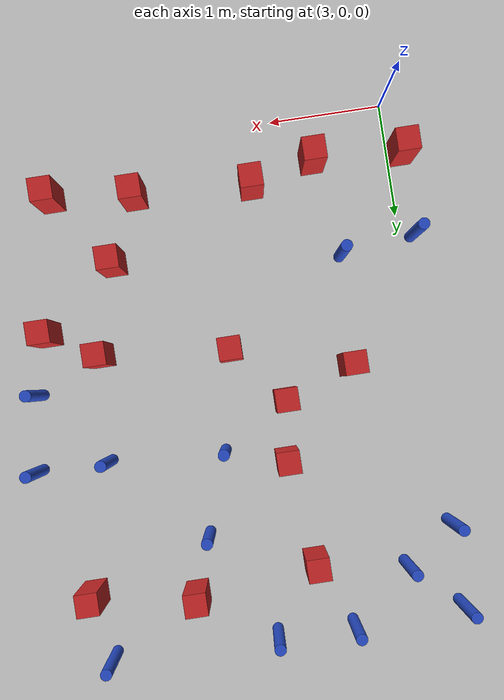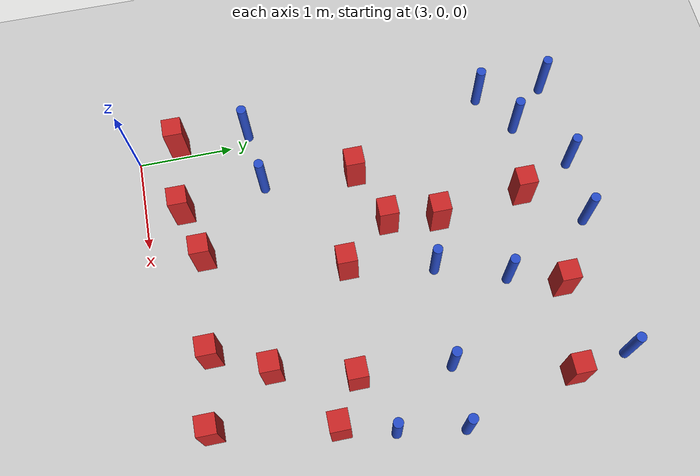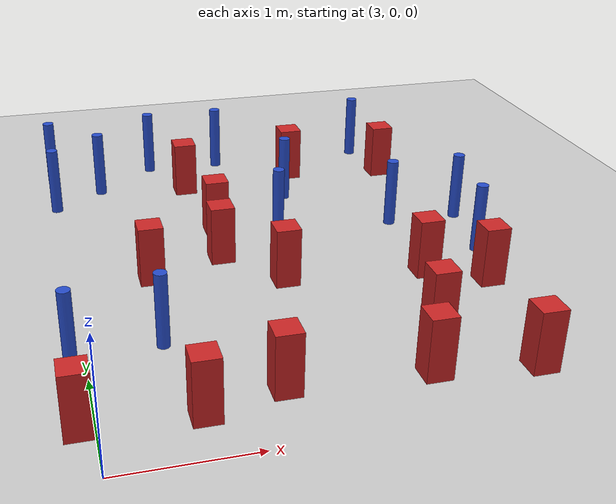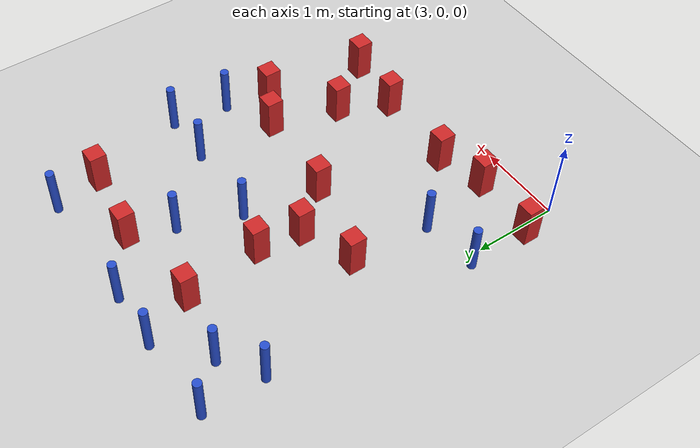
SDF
<sdf version="1.6">
 <world name="default">
  <model name="ground_plane">
   <static>1</static>
   <link name="link">
    <collision name="collision">
     <geometry><plane><normal>0 0 1</normal><size>100 100</size></plane></geometry>
     <surface><friction><ode><mu>100</mu><mu2>50</mu2></ode></friction></surface>
    </collision>
    <visual name="visual">
     <cast_shadows>0</cast_shadows>
     <geometry><plane><normal>0 0 1</normal><size>100 100</size></plane></geometry>
     <material>
      <ambient>1.0 1.0 1.0 1.0</ambient>
      <diffuse>0.8 0.8 0.8 1.0</diffuse>
      <specular>0.01 0.01 0.01 1.000000</specular>
     </material>
    </visual>
   </link>
  </model>
  <model name="square_post_obstacle1">
   <static>true</static>
   <pose>5.80485154844 1.86248550095 8.22691968438e-08 7.2212513382e-06 -7.54495500217e-07 2.29674213826e-05</pose>
   <link name="link">
    <pose>0 0 0.25 0 -0 0</pose>
    <inertial>
     <mass>100</mass>
     <inertia>
      <ixx>0.166667</ixx>
      <ixy>0</ixy>
      <ixz>0</ixz>
      <iyy>0.166667</iyy>
      <iyz>0</iyz>
      <izz>0.166667</izz>
     </inertia>
    </inertial>
    <collision name="collision"><geometry><box><size>.2 .2 .5</size></box></geometry></collision>
    <visual name="visual">
     <geometry><box><size>.2 .2 .5</size></box></geometry>
     <material>
      <script><name>Gazebo/Red</name><uri>file://media/materials/scripts/gazebo.material</uri></script>
     </material>
    </visual>
   </link>
  </model>
  <model name="pole_obstacle25">
   <static>true</static>
   <pose>6.49631645876 2.79729808438 2.88873142074e-08 -9.90536690245e-09 4.6021994898e-07 -1.20965994966e-07</pose>
   <link name="link">
    <pose>0 0 0.3 0 -0 0</pose>
    <inertial>
     <mass>1</mass>
     <inertia><ixx>0.145833</ixx><ixy>0</ixy><ixz>0</ixz><iyy>0.145833</iyy><iyz>0</iyz><izz>0.125</izz></inertia>
    </inertial>
    <collision name="collision">
     <geometry><cylinder><radius>0.05</radius><length>.6</length></cylinder></geometry>
    </collision>
    <visual name="visual">
     <geometry><cylinder><radius>0.05</radius><length>.6</length></cylinder></geometry>
     <material>
      <script><name>Gazebo/Blue</name><uri>file://media/materials/scripts/gazebo.material</uri></script>
     </material>
    </visual>
   </link>
  </model>
  <model name="square_post_obstacle26">
   <static>true</static>
   <pose>4.25897662383 0.563208085032 8.22691968438e-08 7.2212513382e-06 -7.54495500217e-07 2.29674213826e-05</pose>
   <link name="link">
    <pose>0 0 0.25 0 -0 0</pose>
    <inertial>
     <mass>100</mass>
     <inertia>
      <ixx>0.166667</ixx>
      <ixy>0</ixy>
      <ixz>0</ixz>
      <iyy>0.166667</iyy>
      <iyz>0</iyz>
      <izz>0.166667</izz>
     </inertia>
    </inertial>
    <collision name="collision"><geometry><box><size>.2 .2 .5</size></box></geometry></collision>
    <visual name="visual">
     <geometry><box><size>.2 .2 .5</size></box></geometry>
     <material>
      <script><name>Gazebo/Red</name><uri>file://media/materials/scripts/gazebo.material</uri></script>
     </material>
    </visual>
   </link>
  </model>
  <model name="pole_obstacle37">
   <static>true</static>
   <pose>3.93220554547 4.55537312214 2.88873142074e-08 -9.90536689859e-09 4.60219948989e-07 -1.20965994961e-07</pose>
   <link name="link">
    <pose>0 0 0.3 0 -0 0</pose>
    <inertial>
     <mass>1</mass>
     <inertia><ixx>0.145833</ixx><ixy>0</ixy><ixz>0</ixz><iyy>0.145833</iyy><iyz>0</iyz><izz>0.125</izz></inertia>
    </inertial>
    <collision name="collision">
     <geometry><cylinder><radius>0.05</radius><length>.6</length></cylinder></geometry>
    </collision>
    <visual name="visual">
     <geometry><cylinder><radius>0.05</radius><length>.6</length></cylinder></geometry>
     <material>
      <script><name>Gazebo/Blue</name><uri>file://media/materials/scripts/gazebo.material</uri></script>
     </material>
    </visual>
   </link>
  </model>
  <model name="square_post_obstacle47">
   <static>true</static>
   <pose>5.29792968318 0.500472551045 8.22691968438e-08 7.2212513382e-06 -7.54495500217e-07 2.29674213826e-05</pose>
   <link name="link">
    <pose>0 0 0.25 0 -0 0</pose>
    <inertial>
     <mass>100</mass>
     <inertia>
      <ixx>0.166667</ixx>
      <ixy>0</ixy>
      <ixz>0</ixz>
      <iyy>0.166667</iyy>
      <iyz>0</iyz>
      <izz>0.166667</izz>
     </inertia>
    </inertial>
    <collision name="collision"><geometry><box><size>.2 .2 .5</size></box></geometry></collision>
    <visual name="visual">
     <geometry><box><size>.2 .2 .5</size></box></geometry>
     <material>
      <script><name>Gazebo/Red</name><uri>file://media/materials/scripts/gazebo.material</uri></script>
     </material>
    </visual>
   </link>
  </model>
  <model name="pole_obstacle70">
   <static>true</static>
   <pose>6.08183507549 4.52303860356 2.88873142074e-08 -9.90536690842e-09 4.60219948965e-07 -1.20965994976e-07</pose>
   <link name="link">
    <pose>0 0 0.3 0 -0 0</pose>
    <inertial>
     <mass>1</mass>
     <inertia><ixx>0.145833</ixx><ixy>0</ixy><ixz>0</ixz><iyy>0.145833</iyy><iyz>0</iyz><izz>0.125</izz></inertia>
    </inertial>
    <collision name="collision">
     <geometry><cylinder><radius>0.05</radius><length>.6</length></cylinder></geometry>
    </collision>
    <visual name="visual">
     <geometry><cylinder><radius>0.05</radius><length>.6</length></cylinder></geometry>
     <material>
      <script><name>Gazebo/Blue</name><uri>file://media/materials/scripts/gazebo.material</uri></script>
     </material>
    </visual>
   </link>
  </model>
  <model name="square_post_obstacle61">
   <static>true</static>
   <pose>4.30544268135 3.02421922106 8.22691968438e-08 7.2212513382e-06 -7.54495500217e-07 2.29674213826e-05</pose>
   <link name="link">
    <pose>0 0 0.25 0 -0 0</pose>
    <inertial>
     <mass>100</mass>
     <inertia>
      <ixx>0.166667</ixx>
      <ixy>0</ixy>
      <ixz>0</ixz>
      <iyy>0.166667</iyy>
      <iyz>0</iyz>
      <izz>0.166667</izz>
     </inertia>
    </inertial>
    <collision name="collision"><geometry><box><size>.2 .2 .5</size></box></geometry></collision>
    <visual name="visual">
     <geometry><box><size>.2 .2 .5</size></box></geometry>
     <material>
      <script><name>Gazebo/Red</name><uri>file://media/materials/scripts/gazebo.material</uri></script>
     </material>
    </visual>
   </link>
  </model>
  <model name="pole_obstacle76">
   <static>true</static>
   <pose>4.61547871797 4.53841228429 2.88873142074e-08 -9.90536690842e-09 4.60219948965e-07 -1.20965994976e-07</pose>
   <link name="link">
    <pose>0 0 0.3 0 -0 0</pose>
    <inertial>
     <mass>1</mass>
     <inertia><ixx>0.145833</ixx><ixy>0</ixy><ixz>0</ixz><iyy>0.145833</iyy><iyz>0</iyz><izz>0.125</izz></inertia>
    </inertial>
    <collision name="collision">
     <geometry><cylinder><radius>0.05</radius><length>.6</length></cylinder></geometry>
    </collision>
    <visual name="visual">
     <geometry><cylinder><radius>0.05</radius><length>.6</length></cylinder></geometry>
     <material>
      <script><name>Gazebo/Blue</name><uri>file://media/materials/scripts/gazebo.material</uri></script>
     </material>
    </visual>
   </link>
  </model>
  <model name="pole_obstacle77">
   <static>true</static>
   <pose>2.95366409807 3.78678568056 2.88873142074e-08 -9.90536690232e-09 4.6021994898e-07 -1.20965994968e-07</pose>
   <link name="link">
    <pose>0 0 0.3 0 -0 0</pose>
    <inertial>
     <mass>1</mass>
     <inertia><ixx>0.145833</ixx><ixy>0</ixy><ixz>0</ixz><iyy>0.145833</iyy><iyz>0</iyz><izz>0.125</izz></inertia>
    </inertial>
    <collision name="collision">
     <geometry><cylinder><radius>0.05</radius><length>.6</length></cylinder></geometry>
    </collision>
    <visual name="visual">
     <geometry><cylinder><radius>0.05</radius><length>.6</length></cylinder></geometry>
     <material>
      <script><name>Gazebo/Blue</name><uri>file://media/materials/scripts/gazebo.material</uri></script>
     </material>
    </visual>
   </link>
  </model>
  <model name="pole_obstacle81">
   <static>true</static>
   <pose>6.39610808806 2.12889983251 2.88873142074e-08 -9.90536690245e-09 4.6021994898e-07 -1.20965994966e-07</pose>
   <link name="link">
    <pose>0 0 0.3 0 -0 0</pose>
    <inertial>
     <mass>1</mass>
     <inertia><ixx>0.145833</ixx><ixy>0</ixy><ixz>0</ixz><iyy>0.145833</iyy><iyz>0</iyz><izz>0.125</izz></inertia>
    </inertial>
    <collision name="collision">
     <geometry><cylinder><radius>0.05</radius><length>.6</length></cylinder></geometry>
    </collision>
    <visual name="visual">
     <geometry><cylinder><radius>0.05</radius><length>.6</length></cylinder></geometry>
     <material>
      <script><name>Gazebo/Blue</name><uri>file://media/materials/scripts/gazebo.material</uri></script>
     </material>
    </visual>
   </link>
  </model>
  <model name="square_post_obstacle81">
   <static>true</static>
   <pose>6.18040757856 3.95391477961 8.22691968438e-08 7.2212513382e-06 -7.54495500217e-07 2.29674213826e-05</pose>
   <link name="link">
    <pose>0 0 0.25 0 -0 0</pose>
    <inertial>
     <mass>100</mass>
     <inertia>
      <ixx>0.166667</ixx>
      <ixy>0</ixy>
      <ixz>0</ixz>
      <iyy>0.166667</iyy>
      <iyz>0</iyz>
      <izz>0.166667</izz>
     </inertia>
    </inertial>
    <collision name="collision"><geometry><box><size>.2 .2 .5</size></box></geometry></collision>
    <visual name="visual">
     <geometry><box><size>.2 .2 .5</size></box></geometry>
     <material>
      <script><name>Gazebo/Red</name><uri>file://media/materials/scripts/gazebo.material</uri></script>
     </material>
    </visual>
   </link>
  </model>
  <model name="pole_obstacle101">
   <static>true</static>
   <pose>5.86614964058 2.80286822805 2.88873142074e-08 -9.90536690245e-09 4.6021994898e-07 -1.20965994966e-07</pose>
   <link name="link">
    <pose>0 0 0.3 0 -0 0</pose>
    <inertial>
     <mass>1</mass>
     <inertia><ixx>0.145833</ixx><ixy>0</ixy><ixz>0</ixz><iyy>0.145833</iyy><iyz>0</iyz><izz>0.125</izz></inertia>
    </inertial>
    <collision name="collision">
     <geometry><cylinder><radius>0.05</radius><length>.6</length></cylinder></geometry>
    </collision>
    <visual name="visual">
     <geometry><cylinder><radius>0.05</radius><length>.6</length></cylinder></geometry>
     <material>
      <script><name>Gazebo/Blue</name><uri>file://media/materials/scripts/gazebo.material</uri></script>
     </material>
    </visual>
   </link>
  </model>
  <model name="square_post_obstacle95">
   <static>true</static>
   <pose>4.2397135993 2.49239871041 8.22691968438e-08 7.2212513382e-06 -7.54495500217e-07 2.29674213826e-05</pose>
   <link name="link">
    <pose>0 0 0.25 0 -0 0</pose>
    <inertial>
     <mass>100</mass>
     <inertia>
      <ixx>0.166667</ixx>
      <ixy>0</ixy>
      <ixz>0</ixz>
      <iyy>0.166667</iyy>
      <iyz>0</iyz>
      <izz>0.166667</izz>
     </inertia>
    </inertial>
    <collision name="collision"><geometry><box><size>.2 .2 .5</size></box></geometry></collision>
    <visual name="visual">
     <geometry><box><size>.2 .2 .5</size></box></geometry>
     <material>
      <script><name>Gazebo/Red</name><uri>file://media/materials/scripts/gazebo.material</uri></script>
     </material>
    </visual>
   </link>
  </model>
  <model name="pole_obstacle115">
   <static>true</static>
   <pose>3.39289770994 4.09941497682 2.88873142074e-08 -9.90536689859e-09 4.60219948989e-07 -1.20965994961e-07</pose>
   <link name="link">
    <pose>0 0 0.3 0 -0 0</pose>
    <inertial>
     <mass>1</mass>
     <inertia><ixx>0.145833</ixx><ixy>0</ixy><ixz>0</ixz><iyy>0.145833</iyy><iyz>0</iyz><izz>0.125</izz></inertia>
    </inertial>
    <collision name="collision">
     <geometry><cylinder><radius>0.05</radius><length>.6</length></cylinder></geometry>
    </collision>
    <visual name="visual">
     <geometry><cylinder><radius>0.05</radius><length>.6</length></cylinder></geometry>
     <material>
      <script><name>Gazebo/Blue</name><uri>file://media/materials/scripts/gazebo.material</uri></script>
     </material>
    </visual>
   </link>
  </model>
  <model name="pole_obstacle126">
   <static>true</static>
   <pose>3.56003813669 1.2931522656 2.88873142074e-08 -9.90536689395e-09 4.60219949e-07 -1.20965994953e-07</pose>
   <link name="link">
    <pose>0 0 0.3 0 -0 0</pose>
    <inertial>
     <mass>1</mass>
     <inertia><ixx>0.145833</ixx><ixy>0</ixy><ixz>0</ixz><iyy>0.145833</iyy><iyz>0</iyz><izz>0.125</izz></inertia>
    </inertial>
    <collision name="collision">
     <geometry><cylinder><radius>0.05</radius><length>.6</length></cylinder></geometry>
    </collision>
    <visual name="visual">
     <geometry><cylinder><radius>0.05</radius><length>.6</length></cylinder></geometry>
     <material>
      <script><name>Gazebo/Blue</name><uri>file://media/materials/scripts/gazebo.material</uri></script>
     </material>
    </visual>
   </link>
  </model>
  <model name="square_post_obstacle123">
   <static>true</static>
   <pose>4.65722926524 1.98467591924 8.22691968438e-08 7.2212513382e-06 -7.54495500217e-07 2.29674213826e-05</pose>
   <link name="link">
    <pose>0 0 0.25 0 -0 0</pose>
    <inertial>
     <mass>100</mass>
     <inertia>
      <ixx>0.166667</ixx>
      <ixy>0</ixy>
      <ixz>0</ixz>
      <iyy>0.166667</iyy>
      <iyz>0</iyz>
      <izz>0.166667</izz>
     </inertia>
    </inertial>
    <collision name="collision"><geometry><box><size>.2 .2 .5</size></box></geometry></collision>
    <visual name="visual">
     <geometry><box><size>.2 .2 .5</size></box></geometry>
     <material>
      <script><name>Gazebo/Red</name><uri>file://media/materials/scripts/gazebo.material</uri></script>
     </material>
    </visual>
   </link>
  </model>
  <model name="square_post_obstacle130">
   <static>true</static>
   <pose>4.19129608054 3.95977043679 8.22691968438e-08 7.2212513382e-06 -7.54495500217e-07 2.29674213826e-05</pose>
   <link name="link">
    <pose>0 0 0.25 0 -0 0</pose>
    <inertial>
     <mass>100</mass>
     <inertia>
      <ixx>0.166667</ixx>
      <ixy>0</ixy>
      <ixz>0</ixz>
      <iyy>0.166667</iyy>
      <iyz>0</iyz>
      <izz>0.166667</izz>
     </inertia>
    </inertial>
    <collision name="collision"><geometry><box><size>.2 .2 .5</size></box></geometry></collision>
    <visual name="visual">
     <geometry><box><size>.2 .2 .5</size></box></geometry>
     <material>
      <script><name>Gazebo/Red</name><uri>file://media/materials/scripts/gazebo.material</uri></script>
     </material>
    </visual>
   </link>
  </model>
  <model name="pole_obstacle141">
   <static>true</static>
   <pose>5.08723154522 3.5767548894 2.88873142074e-08 -9.90536690245e-09 4.6021994898e-07 -1.20965994966e-07</pose>
   <link name="link">
    <pose>0 0 0.3 0 -0 0</pose>
    <inertial>
     <mass>1</mass>
     <inertia><ixx>0.145833</ixx><ixy>0</ixy><ixz>0</ixz><iyy>0.145833</iyy><iyz>0</iyz><izz>0.125</izz></inertia>
    </inertial>
    <collision name="collision">
     <geometry><cylinder><radius>0.05</radius><length>.6</length></cylinder></geometry>
    </collision>
    <visual name="visual">
     <geometry><cylinder><radius>0.05</radius><length>.6</length></cylinder></geometry>
     <material>
      <script><name>Gazebo/Blue</name><uri>file://media/materials/scripts/gazebo.material</uri></script>
     </material>
    </visual>
   </link>
  </model>
  <model name="square_post_obstacle145">
   <static>true</static>
   <pose>6.24670654416 1.60676971156 8.22691968438e-08 7.2212513382e-06 -7.54495500217e-07 2.29674213826e-05</pose>
   <link name="link">
    <pose>0 0 0.25 0 -0 0</pose>
    <inertial>
     <mass>100</mass>
     <inertia>
      <ixx>0.166667</ixx>
      <ixy>0</ixy>
      <ixz>0</ixz>
      <iyy>0.166667</iyy>
      <iyz>0</iyz>
      <izz>0.166667</izz>
     </inertia>
    </inertial>
    <collision name="collision"><geometry><box><size>.2 .2 .5</size></box></geometry></collision>
    <visual name="visual">
     <geometry><box><size>.2 .2 .5</size></box></geometry>
     <material>
      <script><name>Gazebo/Red</name><uri>file://media/materials/scripts/gazebo.material</uri></script>
     </material>
    </visual>
   </link>
  </model>
  <model name="pole_obstacle153">
   <static>true</static>
   <pose>4.83654097965 2.86497568425 2.88873142074e-08 -9.90536690245e-09 4.6021994898e-07 -1.20965994966e-07</pose>
   <link name="link">
    <pose>0 0 0.3 0 -0 0</pose>
    <inertial>
     <mass>1</mass>
     <inertia><ixx>0.145833</ixx><ixy>0</ixy><ixz>0</ixz><iyy>0.145833</iyy><iyz>0</iyz><izz>0.125</izz></inertia>
    </inertial>
    <collision name="collision">
     <geometry><cylinder><radius>0.05</radius><length>.6</length></cylinder></geometry>
    </collision>
    <visual name="visual">
     <geometry><cylinder><radius>0.05</radius><length>.6</length></cylinder></geometry>
     <material>
      <script><name>Gazebo/Blue</name><uri>file://media/materials/scripts/gazebo.material</uri></script>
     </material>
    </visual>
   </link>
  </model>
  <model name="pole_obstacle163">
   <static>true</static>
   <pose>2.89725983626 1.21169664269 2.88873142074e-08 -9.90536689395e-09 4.60219949e-07 -1.20965994953e-07</pose>
   <link name="link">
    <pose>0 0 0.3 0 -0 0</pose>
    <inertial>
     <mass>1</mass>
     <inertia><ixx>0.145833</ixx><ixy>0</ixy><ixz>0</ixz><iyy>0.145833</iyy><iyz>0</iyz><izz>0.125</izz></inertia>
    </inertial>
    <collision name="collision">
     <geometry><cylinder><radius>0.05</radius><length>.6</length></cylinder></geometry>
    </collision>
    <visual name="visual">
     <geometry><cylinder><radius>0.05</radius><length>.6</length></cylinder></geometry>
     <material>
      <script><name>Gazebo/Blue</name><uri>file://media/materials/scripts/gazebo.material</uri></script>
     </material>
    </visual>
   </link>
  </model>
  <model name="square_post_obstacle154">
   <static>true</static>
   <pose>6.04003852589 0.407985000945 8.22691968438e-08 7.2212513382e-06 -7.54495500217e-07 2.29674213826e-05</pose>
   <link name="link">
    <pose>0 0 0.25 0 -0 0</pose>
    <inertial>
     <mass>100</mass>
     <inertia>
      <ixx>0.166667</ixx>
      <ixy>0</ixy>
      <ixz>0</ixz>
      <iyy>0.166667</iyy>
      <iyz>0</iyz>
      <izz>0.166667</izz>
     </inertia>
    </inertial>
    <collision name="collision"><geometry><box><size>.2 .2 .5</size></box></geometry></collision>
    <visual name="visual">
     <geometry><box><size>.2 .2 .5</size></box></geometry>
     <material>
      <script><name>Gazebo/Red</name><uri>file://media/materials/scripts/gazebo.material</uri></script>
     </material>
    </visual>
   </link>
  </model>
  <model name="square_post_obstacle164">
   <static>true</static>
   <pose>5.27190050154 4.0939122659 8.22691968438e-08 7.22125133819e-06 -7.54495500217e-07 2.29674213826e-05</pose>
   <link name="link">
    <pose>0 0 0.25 0 -0 0</pose>
    <inertial>
     <mass>100</mass>
     <inertia>
      <ixx>0.166667</ixx>
      <ixy>0</ixy>
      <ixz>0</ixz>
      <iyy>0.166667</iyy>
      <iyz>0</iyz>
      <izz>0.166667</izz>
     </inertia>
    </inertial>
    <collision name="collision"><geometry><box><size>.2 .2 .5</size></box></geometry></collision>
    <visual name="visual">
     <geometry><box><size>.2 .2 .5</size></box></geometry>
     <material>
      <script><name>Gazebo/Red</name><uri>file://media/materials/scripts/gazebo.material</uri></script>
     </material>
    </visual>
   </link>
  </model>
  <model name="square_post_obstacle189">
   <static>true</static>
   <pose>3.61711459999 2.26835882462 8.22691968438e-08 7.2212513382e-06 -7.54495500217e-07 2.29674213826e-05</pose>
   <link name="link">
    <pose>0 0 0.25 0 -0 0</pose>
    <inertial>
     <mass>100</mass>
     <inertia>
      <ixx>0.166667</ixx>
      <ixy>0</ixy>
      <ixz>0</ixz>
      <iyy>0.166667</iyy>
      <iyz>0</iyz>
      <izz>0.166667</izz>
     </inertia>
    </inertial>
    <collision name="collision"><geometry><box><size>.2 .2 .5</size></box></geometry></collision>
    <visual name="visual">
     <geometry><box><size>.2 .2 .5</size></box></geometry>
     <material>
      <script><name>Gazebo/Red</name><uri>file://media/materials/scripts/gazebo.material</uri></script>
     </material>
    </visual>
   </link>
  </model>
  <model name="square_post_obstacle202">
   <static>true</static>
   <pose>3.69123090719 0.415777763954 8.22691968438e-08 7.2212513382e-06 -7.54495500217e-07 2.29674213826e-05</pose>
   <link name="link">
    <pose>0 0 0.25 0 -0 0</pose>
    <inertial>
     <mass>100</mass>
     <inertia>
      <ixx>0.166667</ixx>
      <ixy>0</ixy>
      <ixz>0</ixz>
      <iyy>0.166667</iyy>
      <iyz>0</iyz>
      <izz>0.166667</izz>
     </inertia>
    </inertial>
    <collision name="collision"><geometry><box><size>.2 .2 .5</size></box></geometry></collision>
    <visual name="visual">
     <geometry><box><size>.2 .2 .5</size></box></geometry>
     <material>
      <script><name>Gazebo/Red</name><uri>file://media/materials/scripts/gazebo.material</uri></script>
     </material>
    </visual>
   </link>
  </model>
  <model name="square_post_obstacle212">
   <static>true</static>
   <pose>2.89285750543 0.459291063571 8.22691968438e-08 7.2212513382e-06 -7.54495500217e-07 2.29674213826e-05</pose>
   <link name="link">
    <pose>0 0 0.25 0 -0 0</pose>
    <inertial>
     <mass>100</mass>
     <inertia>
      <ixx>0.166667</ixx>
      <ixy>0</ixy>
      <ixz>0</ixz>
      <iyy>0.166667</iyy>
      <iyz>0</iyz>
      <izz>0.166667</izz>
     </inertia>
    </inertial>
    <collision name="collision"><geometry><box><size>.2 .2 .5</size></box></geometry></collision>
    <visual name="visual">
     <geometry><box><size>.2 .2 .5</size></box></geometry>
     <material>
      <script><name>Gazebo/Red</name><uri>file://media/materials/scripts/gazebo.material</uri></script>
     </material>
    </visual>
   </link>
  </model>
  <model name="square_post_obstacle215">
   <static>true</static>
   <pose>5.57343220372 1.06484299526 8.22691968438e-08 7.2212513382e-06 -7.54495500217e-07 2.29674213826e-05</pose>
   <link name="link">
    <pose>0 0 0.25 0 -0 0</pose>
    <inertial>
     <mass>100</mass>
     <inertia>
      <ixx>0.166667</ixx>
      <ixy>0</ixy>
      <ixz>0</ixz>
      <iyy>0.166667</iyy>
      <iyz>0</iyz>
      <izz>0.166667</izz>
     </inertia>
    </inertial>
    <collision name="collision"><geometry><box><size>.2 .2 .5</size></box></geometry></collision>
    <visual name="visual">
     <geometry><box><size>.2 .2 .5</size></box></geometry>
     <material>
      <script><name>Gazebo/Red</name><uri>file://media/materials/scripts/gazebo.material</uri></script>
     </material>
    </visual>
   </link>
  </model>
  <model name="pole_obstacle208">
   <static>true</static>
   <pose>2.9575882531 4.52290290336 2.88873142074e-08 -9.90536689859e-09 4.60219948989e-07 -1.20965994961e-07</pose>
   <link name="link">
    <pose>0 0 0.3 0 -0 0</pose>
    <inertial>
     <mass>1</mass>
     <inertia><ixx>0.145833</ixx><ixy>0</ixy><ixz>0</ixz><iyy>0.145833</iyy><iyz>0</iyz><izz>0.125</izz></inertia>
    </inertial>
    <collision name="collision">
     <geometry><cylinder><radius>0.05</radius><length>.6</length></cylinder></geometry>
    </collision>
    <visual name="visual">
     <geometry><cylinder><radius>0.05</radius><length>.6</length></cylinder></geometry>
     <material>
      <script><name>Gazebo/Blue</name><uri>file://media/materials/scripts/gazebo.material</uri></script>
     </material>
    </visual>
   </link>
  </model>
 </world>
</sdf>
